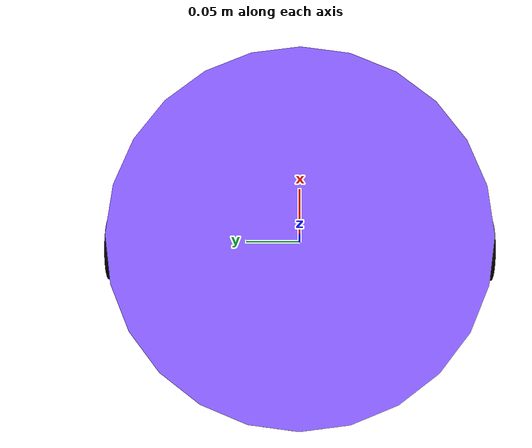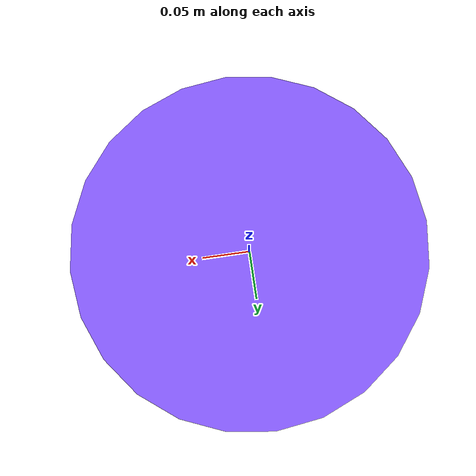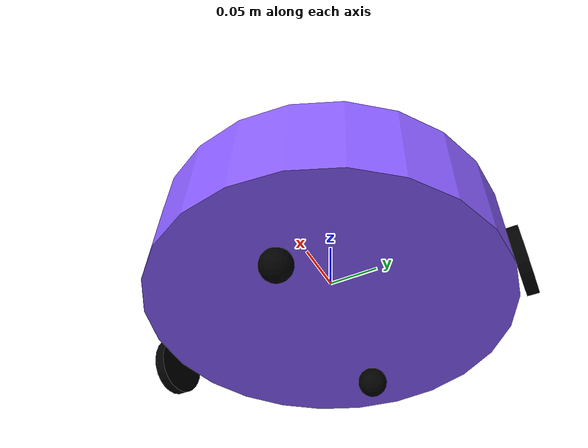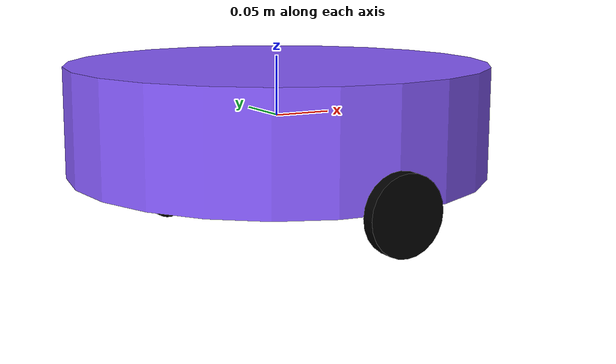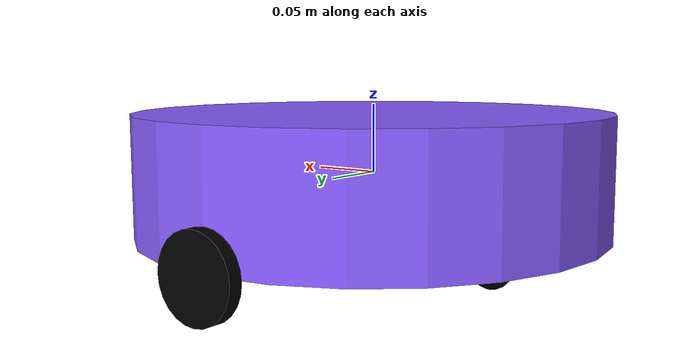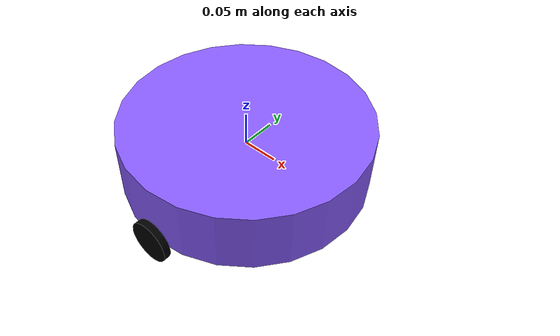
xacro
<?xml version="1.0"?>

<robot xmlns:xacro="http://www.ros.org/wiki/xacro" name="robot_vacuum">

    <material name="purple">
        <color rgba="0.53 0.36 1.0 1.0"/>
    </material>

    <material name="black">
        <color rgba="0.0 0.0 0.0 1.0"/>
    </material>

    <material name="gray">
        <color rgba="0.4 0.4 0.4 1.0"/>
    </material>

    <link name="base_footprint"/>

    <link name="base_link">
        <visual>
            <origin xyz="0.0 0.0 0.0" rpy="0.0 0.0 0.0"/>
            <geometry>
                <cylinder radius="0.175" length="0.09"/>
            </geometry>
            <material name="purple"/>
        </visual>
        <collision>
            <origin xyz="0.0 0.0 0.0" rpy="0.0 0.0 0.0"/>
            <geometry>
                <cylinder radius="0.175" length="0.09"/>
            </geometry>
        </collision>
        <xacro:inertial_cylinder mass="0.5" radius="0.175" length="0.09" xyz="0 0 0" rpy="0 0 0"/>
    </link>

    <joint name="footprint_joint" type="fixed">
        <origin xyz="0.0 0.0 0.0" rpy="0.0 0.0 0.0"/>
        <parent link="base_footprint"/>
        <child link="base_link"/>
    </joint>

    <xacro:macro name = "wheel_link" params = "prefix">
        <link name="${prefix}_wheel">
            <visual>
                <origin xyz="0.0 0.0 0.0" rpy="${pi/2} 0.0 0.0"/>
                <geometry>
                    <cylinder radius="0.03" length="0.01"/>
                </geometry>
                <material name="black"/>
            </visual>
            <collision>
                <origin xyz="0.0 0.0 0.0" rpy="${pi/2} 0.0 0.0"/>
                <geometry>
                    <cylinder radius="0.03" length="0.01"/>
                </geometry>
            </collision>
            <xacro:inertial_cylinder mass="0.2" radius="0.03" length="0.01" xyz="0 0 0" rpy="0 0 0"/>
        </link>
    </xacro:macro>

    <xacro:wheel_link prefix = "right"/>
    <xacro:wheel_link prefix = "left"/>

    <xacro:macro name = "wheel_joint" params = "prefix y">
        <joint name="${prefix}_wheel_joint" type="continuous">
            <origin xyz="0.0 ${y} -0.045" rpy="0.0 0.0 0.0"/>
            <parent link="base_link"/>
            <child link="${prefix}_wheel"/>
            <axis xyz="0.0 1.0 0.0"/>
        </joint>
    </xacro:macro>

    <xacro:wheel_joint prefix = "right" y = "-0.18"/>
    <xacro:wheel_joint prefix = "left" y = "0.18"/>

    <xacro:macro name = "caster_wheel" params = "side">
        <link name="${side}_caster_wheel">
            <visual>
                <origin xyz="0.0 0.0 0.0" rpy="0.0 0.0 0.0"/>
                <geometry>
                    <sphere radius="0.015"/>
                </geometry>
                <material name="black"/>
            </visual>
            <collision>
                <origin xyz="0.0 0.0 0.0" rpy="0.0 0.0 0.0"/>
                <geometry>
                    <sphere radius="0.015"/>
                </geometry>
            </collision>
            <inertial_sphere mass="0.05" radius="0.015" xyz="0 0 0" rpy="0 0 0"/>
        </link>
    </xacro:macro>

    <xacro:caster_wheel side = "front"/>
    <xacro:caster_wheel side = "back"/>

    <xacro:macro name = "caster_wheel_joint" params = "side x">
        <joint name="${side}_caster_wheel_joint" type="fixed">
            <origin xyz="${x} 0.0 -0.06" rpy="0.0 0.0 0.0"/>
            <parent link="base_link"/>
            <child link="${side}_caster_wheel"/>
        </joint>
    </xacro:macro>

    <xacro:caster_wheel_joint side = "front" x = "0.1"/>
    <xacro:caster_wheel_joint side = "back" x = "-0.1"/>

</robot>
